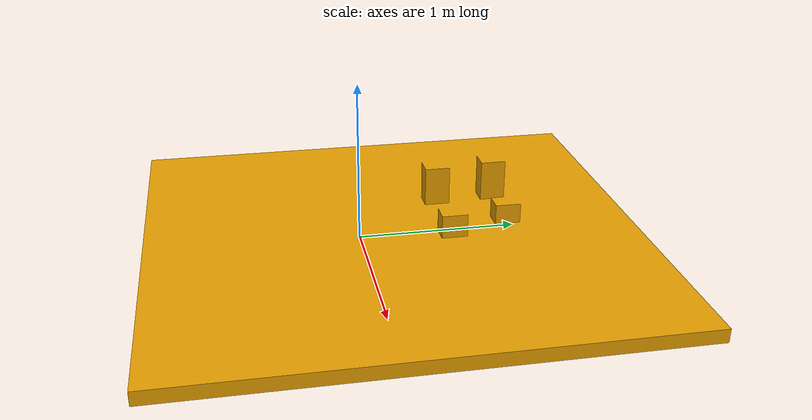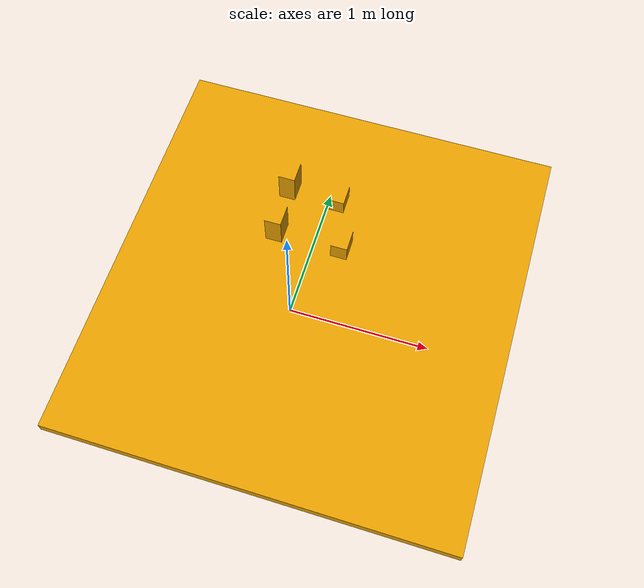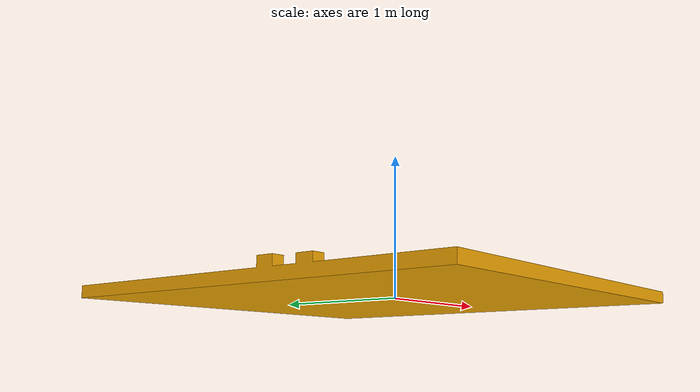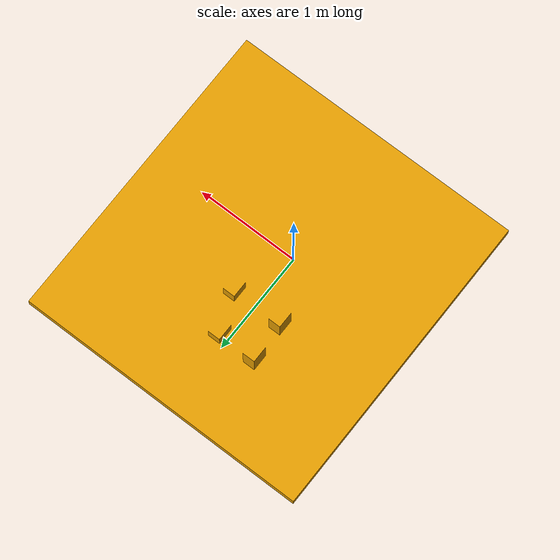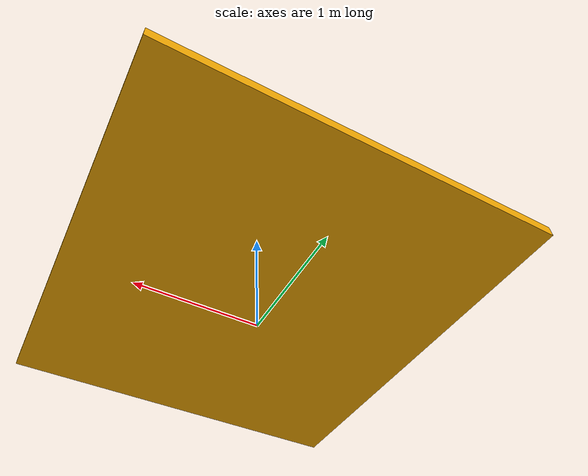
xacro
<?xml version="1.0"?>
<robot xmlns:xacro="http://wiki.ros.org/xacro">

  <material name="blue">
    <color rgba="0 0 0.8 1"/>
  </material>

  <xacro:macro name="myObject"/>

  <link name="ground_link">
    <collision>
      <origin xyz="0 0 0.0" rpy="0 0 0"/>
      <geometry>
        <mesh filename="package://ur5_robot/objects/models/Table.dae"/>
      </geometry>
    </collision>

    <visual>
      <origin rpy="0.0 0 0" xyz="0 0 0"/>
      <geometry>
        <mesh filename="package://ur5_robot/objects/models/Ground.dae"/>
      </geometry>
    </visual>

    <inertial>
      <origin xyz="0 0.0 0.0" rpy="0 0 0"/>
      <mass value="2.5" />
      <inertia ixx="1.0" ixy="0.0" ixz="0.0" iyy="1.0" iyz="0.0" izz="1.0" />
    </inertial>
  </link>

</robot>
